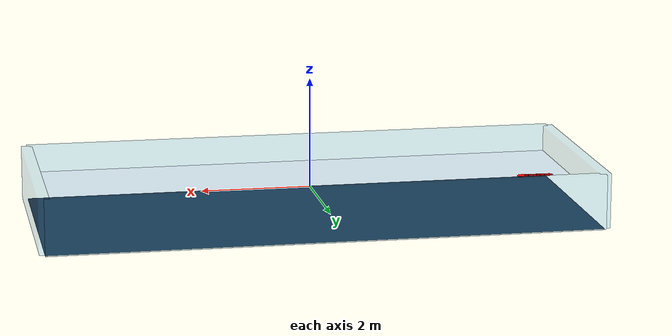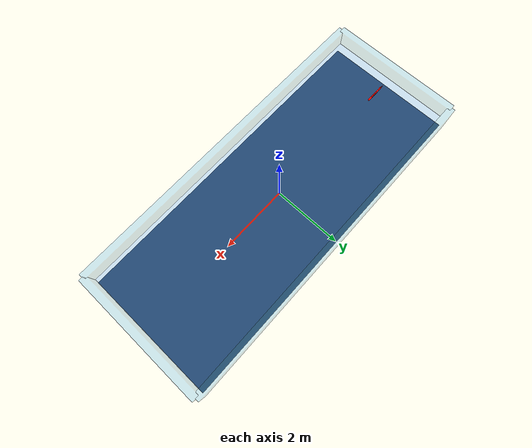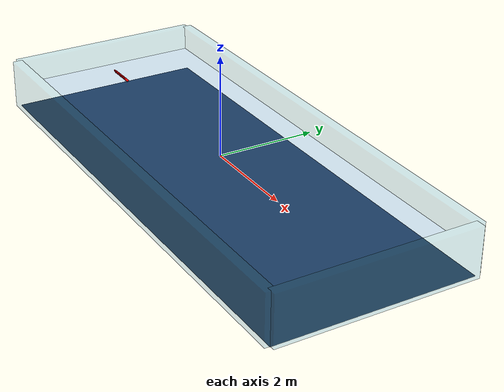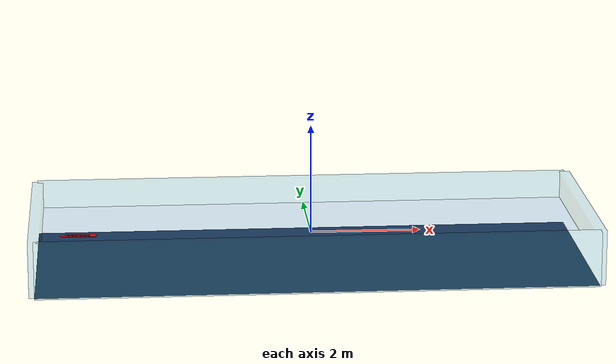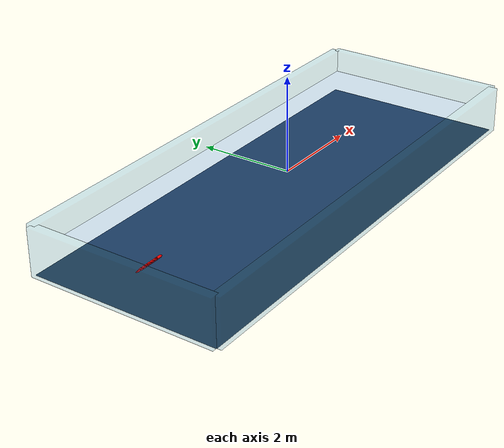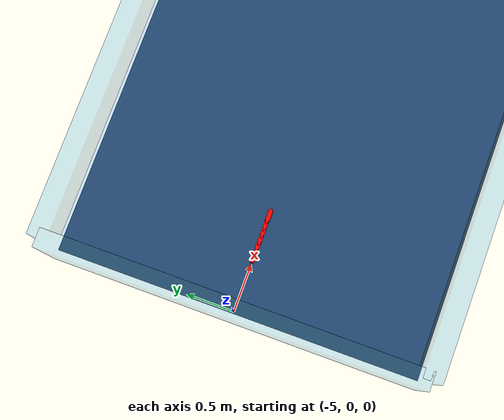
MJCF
<mujoco model="test2">
<compiler angle="radian" meshdir="C:/Users/AWEI/Documents/GitHub/robot_eel_YTY/3D_printer/AWEI/12_30printmujoco/test2/meshes/stl"/>
<option timestep="0.001" integrator="RK4" density="1000" viscosity="0.01" gravity="0 0 -9.81"/>
<visual>
<global fovy="45" azimuth="135" elevation="-20"/>
<quality shadowsize="2048"/>
<rgba fog="0 0.5 0.8 1"/>
<map fogstart="1" fogend="5"/>
</visual>
<asset>
<mesh name="base_link_visual" file="base_link_visual.stl"/>
<mesh name="link1_visual" file="link1_visual.stl"/>
<mesh name="link2_visual" file="link2_visual.stl"/>
<mesh name="link3_visual" file="link3_visual.stl"/>
<mesh name="link4_visual" file="link4_visual.stl"/>
<mesh name="link5_visual" file="link5_visual.stl"/>
<mesh name="link6_visual" file="link6_visual.stl"/>
<texture name="texplane" builtin="checker" rgb1=".2 .3 .4" rgb2=".1 .15 .2" type="2d" width="512" height="512" mark="cross" markrgb=".8 .8 .8"/>
<material name="matplane" reflectance="0.5" texture="texplane" texrepeat="4 4" texuniform="true"/>
<material name="water_visual_mat" rgba="0 0.4 0.9 0.2" reflectance="0.9" shininess="1" specular="1"/>
</asset>
<worldbody>
<light directional="true" diffuse=".8 .8 .8" specular=".2 .2 .2" pos="0 0 5" dir="0 0 -1"/>
<geom name="floor" pos="0 0 -0.5" size="5 2 0.1" type="plane" material="matplane" contype="1" conaffinity="1"/>
<geom name="wall_front" type="box" pos="5 0 0" size="0.1 2 0.5" rgba="0 0.5 0.8 0.2" contype="1" conaffinity="1"/>
<geom name="wall_back" type="box" pos="-5 0 0" size="0.1 2 0.5" rgba="0 0.5 0.8 0.2" contype="1" conaffinity="1"/>
<geom name="wall_left" type="box" pos="0 2 0" size="5 0.1 0.5" rgba="0 0.5 0.8 0.2" contype="1" conaffinity="1"/>
<geom name="wall_right" type="box" pos="0 -2 0" size="5 0.1 0.5" rgba="0 0.5 0.8 0.2" contype="1" conaffinity="1"/>
<geom name="water_volume" type="box" pos="0 0 -0.25" size="4.95 1.95 0.27" material="water_visual_mat" contype="0" conaffinity="0" group="1"/>
<geom name="center_line" type="capsule" pos="0 0 0" size="0.005 5" quat="0.7071 0 0.7071 0" rgba="1 0 0 0.5" contype="0" conaffinity="0" group="1"/>
<body name="base_link" pos="-4 0 0">
 <freejoint name="root"/>
<inertial pos="-0.30 0.02 -0.20" mass="0.5" diaginertia="0.0002 0.0002 0.0002"/>
<geom name="base_link_collision" pos="-0.58754 0.02815 -0.00475" quat="0.707105 0 0 -0.707108" type="mesh" contype="2" conaffinity="1" group="0" rgba="1 0 0 1" mesh="base_link_visual" fluidshape="ellipsoid" fluidcoef="0.5 0.25 0.0 1.0 1.0"/>
<geom name="base_link_visual" pos="-0.58754 0.02815 -0.00475" quat="0.707105 0 0 -0.707108" type="mesh" contype="0" conaffinity="0" group="1" mesh="base_link_visual"/>
<body name="link1" pos="-0.06425 0.00065 0.042">
<inertial pos="-0.0275 0 -0.05" quat="0.5 0.5 0.5 0.5" mass="0.13" diaginertia="0.00015 0.00015 1e-05"/>
<joint name="link1_joint" pos="0 0 0" axis="0 0 1" range="-1.5 1.5" actuatorfrcrange="-10 10" armature="0.05" damping="1.5"/>
<geom name="link1_collision" pos="-0.52329 0.0275 -0.04675" quat="0.707105 0 0 -0.707108" type="mesh" group="0" contype="2" conaffinity="1" rgba="1 0 0 1" mesh="link1_visual" fluidshape="ellipsoid" fluidcoef="0.5 0.25 0.0 1.0 1.0"/>
<geom name="link1_visual" pos="-0.52329 0.0275 -0.04675" quat="0.707105 0 0 -0.707108" type="mesh" contype="0" conaffinity="0" group="1" density="0" mesh="link1_visual"/>
<body name="link2" pos="-0.0747 0 0">
<inertial pos="-0.0275 0 -0.05" quat="0.5 0.5 0.5 0.5" mass="0.13" diaginertia="0.00015 0.00015 1e-05"/>
<joint name="link2_joint" pos="0 0 0" axis="0 0 1" range="-1.5 1.5" actuatorfrcrange="-10 10" armature="0.05" damping="1.5"/>
<geom name="link2_collision" pos="-0.44859 0.0275 -0.04675" quat="0.707105 0 0 -0.707108" type="mesh" group="0" contype="2" conaffinity="1" rgba="1 0 0 1" mesh="link2_visual" fluidshape="ellipsoid" fluidcoef="0.5 0.25 0.0 1.0 1.0"/>
<geom name="link2_visual" pos="-0.44859 0.0275 -0.04675" quat="0.707105 0 0 -0.707108" type="mesh" contype="0" conaffinity="0" group="1" density="0" mesh="link2_visual"/>
<body name="link3" pos="-0.0747 0 0">
<inertial pos="-0.0275 0 -0.05" quat="0.5 0.5 0.5 0.5" mass="0.13" diaginertia="0.00015 0.00015 1e-05"/>
<joint name="link3_joint" pos="0 0 0" axis="0 0 1" range="-1.5 1.5" actuatorfrcrange="-10 10" armature="0.05" damping="1.5"/>
<geom name="link3_collision" pos="-0.37389 0.0275 -0.04675" quat="0.707105 0 0 -0.707108" type="mesh" group="0" contype="2" conaffinity="1" rgba="1 0 0 1" mesh="link3_visual" fluidshape="ellipsoid" fluidcoef="0.5 0.25 0.0 1.0 1.0"/>
<geom name="link3_visual" pos="-0.37389 0.0275 -0.04675" quat="0.707105 0 0 -0.707108" type="mesh" contype="0" conaffinity="0" group="1" density="0" mesh="link3_visual"/>
<body name="link4" pos="-0.07332 3e-05 -0.00111">
<inertial pos="-0.02888 -3e-05 -0.05" quat="0.5 0.5 0.5 0.5" mass="0.13" diaginertia="0.00015 0.00015 1e-05"/>
<joint name="link4_joint" pos="0 0 0" axis="0 0 1" range="-1.5 1.5" actuatorfrcrange="-10 10" armature="0.05" damping="1.5"/>
<geom name="link4_collision" pos="-0.30057 0.02747 -0.04564" quat="0.707105 0 0 -0.707108" type="mesh" group="0" contype="2" conaffinity="1" rgba="1 0 0 1" mesh="link4_visual" fluidshape="ellipsoid" fluidcoef="0.5 0.25 0.0 1.0 1.0"/>
<geom name="link4_visual" pos="-0.30057 0.02747 -0.04564" quat="0.707105 0 0 -0.707108" type="mesh" contype="0" conaffinity="0" group="1" density="0" mesh="link4_visual"/>
<body name="link5" pos="-0.07608 -3e-05 0.00111">
<inertial pos="-0.0275 0 -0.05" quat="0.5 0.5 0.5 0.5" mass="0.13" diaginertia="0.00015 0.00015 1e-05"/>
<joint name="link5_joint" pos="0 0 0" axis="0 0 1" range="-1.5 1.5" actuatorfrcrange="-10 10" armature="0.05" damping="1.5"/>
<geom name="link5_collision" pos="-0.22449 0.0275 -0.04675" quat="0.707105 0 0 -0.707108" type="mesh" group="0" contype="2" conaffinity="1" rgba="1 0 0 1" mesh="link5_visual" fluidshape="ellipsoid" fluidcoef="0.5 0.25 0.0 1.0 1.0"/>
<geom name="link5_visual" pos="-0.22449 0.0275 -0.04675" quat="0.707105 0 0 -0.707108" type="mesh" contype="0" conaffinity="0" group="1" density="0" mesh="link5_visual"/>
<body name="link6" pos="-0.0747 0 0">
<inertial pos="-0.05018 0 -0.05" quat="0 0.707107 0 0.707107" mass="0.15" diaginertia="0.00012 0.00011 1e-05"/>
<joint name="link6_joint" pos="0 0 0" axis="0 0 1" range="-1.5 1.5" actuatorfrcrange="-10 10" armature="0.05" damping="1.5"/>
<geom name="link6_collision" pos="-0.14979 0.0275 -0.04675" quat="0.707105 0 0 -0.707108" type="mesh" group="0" contype="2" conaffinity="1" rgba="1 0 0 1" mesh="link6_visual" fluidshape="ellipsoid" fluidcoef="0.5 0.25 0.0 1.0 1.0"/>
<geom name="link6_visual" pos="-0.14979 0.0275 -0.04675" quat="0.707105 0 0 -0.707108" type="mesh" contype="0" conaffinity="0" group="1" density="0" mesh="link6_visual"/>
</body>
</body>
</body>
</body>
</body>
</body>
</body>
</worldbody>
<actuator>
<position joint="link1_joint" kp="100"/>
<position joint="link2_joint" kp="100"/>
<position joint="link3_joint" kp="100"/>
<position joint="link4_joint" kp="100"/>
<position joint="link5_joint" kp="100"/>
<position joint="link6_joint" kp="100"/>
</actuator>
</mujoco>
